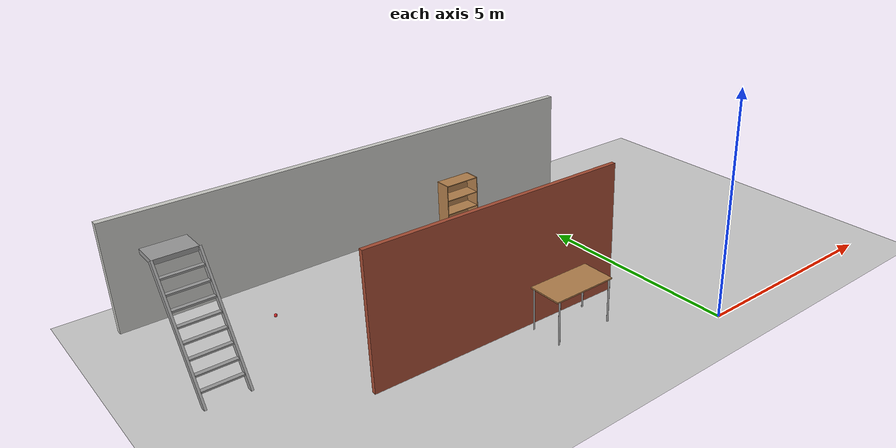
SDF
<sdf version="1.6">
 <world name="default">
  <model name="ground_plane">
   <static>1</static>
   <link name="link">
    <collision name="collision">
     <geometry><plane><normal>0 0 1</normal><size>100 100</size></plane></geometry>
     <surface><friction><ode><mu>100</mu><mu2>50</mu2></ode></friction></surface>
    </collision>
    <visual name="visual">
     <cast_shadows>0</cast_shadows>
     <geometry><plane><normal>0 0 1</normal><size>100 100</size></plane></geometry>
     <material>
      <script><uri>file://media/materials/scripts/gazebo.material</uri><name>Gazebo/Grey</name></script>
     </material>
    </visual>
   </link>
  </model>
  <model name="bookshelf">
   <static>1</static>
   <link name="link">
    <inertial><mass>1</mass></inertial>
    <collision name="back">
     <pose>0 0.005 0.6 0 -0 0</pose>
     <geometry><box><size>0.9 0.01 1.2</size></box></geometry>
    </collision>
    <visual name="visual1">
     <pose>0 0.005 0.6 0 -0 0</pose>
     <geometry><box><size>0.9 0.01 1.2</size></box></geometry>
     <material>
      <script><uri>file://media/materials/scripts/gazebo.material</uri><name>Gazebo/Wood</name></script>
     </material>
    </visual>
    <collision name="left_side">
     <pose>0.45 -0.195 0.6 0 -0 0</pose>
     <geometry><box><size>0.02 0.4 1.2</size></box></geometry>
    </collision>
    <visual name="visual2">
     <pose>0.45 -0.195 0.6 0 -0 0</pose>
     <geometry><box><size>0.02 0.4 1.2</size></box></geometry>
     <material>
      <script><uri>file://media/materials/scripts/gazebo.material</uri><name>Gazebo/Wood</name></script>
     </material>
    </visual>
    <collision name="right_side">
     <pose>-0.45 -0.195 0.6 0 -0 0</pose>
     <geometry><box><size>0.02 0.4 1.2</size></box></geometry>
    </collision>
    <visual name="visual3">
     <pose>-0.45 -0.195 0.6 0 -0 0</pose>
     <geometry><box><size>0.02 0.4 1.2</size></box></geometry>
     <material>
      <script><uri>file://media/materials/scripts/gazebo.material</uri><name>Gazebo/Wood</name></script>
     </material>
    </visual>
    <collision name="bottom">
     <pose>0 -0.195 0.03 0 -0 0</pose>
     <geometry><box><size>0.88 0.4 0.06</size></box></geometry>
    </collision>
    <visual name="visual4">
     <pose>0 -0.195 0.03 0 -0 0</pose>
     <geometry><box><size>0.88 0.4 0.06</size></box></geometry>
     <material>
      <script><uri>file://media/materials/scripts/gazebo.material</uri><name>Gazebo/Wood</name></script>
     </material>
    </visual>
    <collision name="top">
     <pose>0 -0.195 1.19 0 -0 0</pose>
     <geometry><box><size>0.88 0.4 0.02</size></box></geometry>
    </collision>
    <visual name="visual5">
     <pose>0 -0.195 1.19 0 -0 0</pose>
     <geometry><box><size>0.88 0.4 0.02</size></box></geometry>
     <material>
      <script><uri>file://media/materials/scripts/gazebo.material</uri><name>Gazebo/Wood</name></script>
     </material>
    </visual>
    <collision name="low_shelf">
     <pose>0 -0.195 0.43 0 -0 0</pose>
     <geometry><box><size>0.88 0.4 0.02</size></box></geometry>
    </collision>
    <visual name="visual6">
     <pose>0 -0.195 0.43 0 -0 0</pose>
     <geometry><box><size>0.88 0.4 0.02</size></box></geometry>
     <material>
      <script><uri>file://media/materials/scripts/gazebo.material</uri><name>Gazebo/Wood</name></script>
     </material>
    </visual>
    <collision name="high_shelf">
     <pose>0 -0.195 0.8 0 -0 0</pose>
     <geometry><box><size>0.88 0.4 0.02</size></box></geometry>
    </collision>
    <visual name="visual7">
     <pose>0 -0.195 0.8 0 -0 0</pose>
     <geometry><box><size>0.88 0.4 0.02</size></box></geometry>
     <material>
      <script><uri>file://media/materials/scripts/gazebo.material</uri><name>Gazebo/Wood</name></script>
     </material>
    </visual>
   </link>
   <pose>-1.46178 7.33963 0 0 -0 0</pose>
  </model>
  <model name="unit_box">
   <link name="link">
    <inertial>
     <mass>1</mass>
     <inertia>
      <ixx>0.166667</ixx>
      <ixy>0</ixy>
      <ixz>0</ixz>
      <iyy>0.166667</iyy>
      <iyz>0</iyz>
      <izz>0.166667</izz>
     </inertia>
    </inertial>
    <visual name="visual">
     <geometry><box><size>0.1 6 3</size></box></geometry>
     <material>
      <script><name>Gazebo/Bricks</name><uri>file://media/materials/scripts/gazebo.material</uri></script>
      <shader type="pixel"><normal_map>__default__</normal_map></shader>
      <ambient>1 1 1 1</ambient>
      <diffuse>0.7 0.7 0.7 1</diffuse>
      <specular>0.01 0.01 0.01 1</specular>
      <emissive>0 0 0 1</emissive>
     </material>
    </visual>
    <collision name="collision">
     <geometry><box><size>0.1 6 3</size></box></geometry>
     <surface>
      <friction>
       <ode><mu>1</mu><mu2>1</mu2><fdir1>0 0 0</fdir1><slip1>0</slip1><slip2>0</slip2></ode>
       <torsional>
        <coefficient>1</coefficient>
        <patch_radius>0</patch_radius>
        <surface_radius>0</surface_radius>
        <use_patch_radius>1</use_patch_radius>
        <ode><slip>0</slip></ode>
       </torsional>
      </friction>
      <bounce><restitution_coefficient>0</restitution_coefficient><threshold>1e+06</threshold></bounce>
      <contact>
       <collide_without_contact>0</collide_without_contact>
       <collide_without_contact_bitmask>1</collide_without_contact_bitmask>
       <collide_bitmask>1</collide_bitmask>
       <ode>
        <soft_cfm>0</soft_cfm>
        <soft_erp>0.2</soft_erp>
        <kp>1e+13</kp>
        <kd>1</kd>
        <max_vel>0.01</max_vel>
        <min_depth>0</min_depth>
       </ode>
       <bullet>
        <split_impulse>1</split_impulse>
        <split_impulse_penetration_threshold>-0.01</split_impulse_penetration_threshold>
        <soft_cfm>0</soft_cfm>
        <soft_erp>0.2</soft_erp>
        <kp>1e+13</kp>
        <kd>1</kd>
       </bullet>
      </contact>
     </surface>
    </collision>
   </link>
   <static>0</static>
   <pose>-3.89904 2.41632 1.49829 0.00057 9e-06 -1.58713</pose>
  </model>
  <model name="building">
   <link name="Wall_41">
    <pose>-0.05 9.09977 0 0 -0 0</pose>
    <inertial>
     <mass>1</mass>
     <inertia><ixx>1</ixx><ixy>0</ixy><ixz>0</ixz><iyy>1</iyy><iyz>0</iyz><izz>1</izz></inertia>
    </inertial>
    <visual name="Wall_41_Visual">
     <pose>0 0 1.25 0 -0 0</pose>
     <geometry><box><size>11.75 0.15 2.5</size></box></geometry>
     <material>
      <script><uri>file://media/materials/scripts/gazebo.material</uri><name>Gazebo/CeilingTiled</name></script>
      <ambient>1 1 0 1</ambient>
      <shader type="pixel"><normal_map>__default__</normal_map></shader>
      <diffuse>1 1 1 1</diffuse>
      <specular>0 0 0 1</specular>
      <emissive>0 0 0 1</emissive>
     </material>
     <meta><layer>0</layer></meta>
    </visual>
    <collision name="Wall_41_Collision">
     <pose>0 0 1.25 0 -0 0</pose>
     <geometry><box><size>11.75 0.15 2.5</size></box></geometry>
     <surface>
      <friction>
       <ode><mu>1</mu><mu2>1</mu2><fdir1>0 0 0</fdir1><slip1>0</slip1><slip2>0</slip2></ode>
       <torsional>
        <coefficient>1</coefficient>
        <patch_radius>0</patch_radius>
        <surface_radius>0</surface_radius>
        <use_patch_radius>1</use_patch_radius>
        <ode><slip>0</slip></ode>
       </torsional>
      </friction>
      <bounce><restitution_coefficient>0</restitution_coefficient><threshold>1e+06</threshold></bounce>
      <contact>
       <collide_without_contact>0</collide_without_contact>
       <collide_without_contact_bitmask>1</collide_without_contact_bitmask>
       <collide_bitmask>1</collide_bitmask>
       <ode>
        <soft_cfm>0</soft_cfm>
        <soft_erp>0.2</soft_erp>
        <kp>1e+13</kp>
        <kd>1</kd>
        <max_vel>0.01</max_vel>
        <min_depth>0</min_depth>
       </ode>
       <bullet>
        <split_impulse>1</split_impulse>
        <split_impulse_penetration_threshold>-0.01</split_impulse_penetration_threshold>
        <soft_cfm>0</soft_cfm>
        <soft_erp>0.2</soft_erp>
        <kp>1e+13</kp>
        <kd>1</kd>
       </bullet>
      </contact>
     </surface>
    </collision>
   </link>
   <static>1</static>
   <pose>-3.83214 -1.50097 0 0 -0 0</pose>
  </model>
  <model name="ladder_60deg_0rails">
   <static>1</static>
   <link name="step0">
    <pose>0 0.15396 0.266667 0 -0 0</pose>
    <inertial>
     <mass>9.75482</mass>
     <inertia>
      <ixx>0.00957124</ixx>
      <iyy>0.65963</iyy>
      <izz>0.666842</izz>
      <ixy>0</ixy>
      <ixz>0</ixz>
      <iyz>0</iyz>
     </inertia>
    </inertial>
    <collision name="collision"><geometry><box><size>0.9 0.1016 0.0381</size></box></geometry></collision>
    <visual name="visual">
     <geometry><box><size>0.9 0.1016 0.0381</size></box></geometry>
     <material>
      <script><uri>file://media/materials/scripts/gazebo.material</uri><name>Gazebo/Grey</name></script>
     </material>
    </visual>
   </link>
   <link name="step1">
    <pose>0 0.30792 0.533333 0 -0 0</pose>
    <inertial>
     <mass>9.75482</mass>
     <inertia>
      <ixx>0.00957124</ixx>
      <iyy>0.65963</iyy>
      <izz>0.666842</izz>
      <ixy>0</ixy>
      <ixz>0</ixz>
      <iyz>0</iyz>
     </inertia>
    </inertial>
    <collision name="collision"><geometry><box><size>0.9 0.1016 0.0381</size></box></geometry></collision>
    <visual name="visual">
     <geometry><box><size>0.9 0.1016 0.0381</size></box></geometry>
     <material>
      <script><uri>file://media/materials/scripts/gazebo.material</uri><name>Gazebo/Grey</name></script>
     </material>
    </visual>
   </link>
   <link name="step2">
    <pose>0 0.46188 0.8 0 -0 0</pose>
    <inertial>
     <mass>9.75482</mass>
     <inertia>
      <ixx>0.00957124</ixx>
      <iyy>0.65963</iyy>
      <izz>0.666842</izz>
      <ixy>0</ixy>
      <ixz>0</ixz>
      <iyz>0</iyz>
     </inertia>
    </inertial>
    <collision name="collision"><geometry><box><size>0.9 0.1016 0.0381</size></box></geometry></collision>
    <visual name="visual">
     <geometry><box><size>0.9 0.1016 0.0381</size></box></geometry>
     <material>
      <script><uri>file://media/materials/scripts/gazebo.material</uri><name>Gazebo/Grey</name></script>
     </material>
    </visual>
   </link>
   <link name="step3">
    <pose>0 0.61584 1.06667 0 -0 0</pose>
    <inertial>
     <mass>9.75482</mass>
     <inertia>
      <ixx>0.00957124</ixx>
      <iyy>0.65963</iyy>
      <izz>0.666842</izz>
      <ixy>0</ixy>
      <ixz>0</ixz>
      <iyz>0</iyz>
     </inertia>
    </inertial>
    <collision name="collision"><geometry><box><size>0.9 0.1016 0.0381</size></box></geometry></collision>
    <visual name="visual">
     <geometry><box><size>0.9 0.1016 0.0381</size></box></geometry>
     <material>
      <script><uri>file://media/materials/scripts/gazebo.material</uri><name>Gazebo/Grey</name></script>
     </material>
    </visual>
   </link>
   <link name="step4">
    <pose>0 0.7698 1.33333 0 -0 0</pose>
    <inertial>
     <mass>9.75482</mass>
     <inertia>
      <ixx>0.00957124</ixx>
      <iyy>0.65963</iyy>
      <izz>0.666842</izz>
      <ixy>0</ixy>
      <ixz>0</ixz>
      <iyz>0</iyz>
     </inertia>
    </inertial>
    <collision name="collision"><geometry><box><size>0.9 0.1016 0.0381</size></box></geometry></collision>
    <visual name="visual">
     <geometry><box><size>0.9 0.1016 0.0381</size></box></geometry>
     <material>
      <script><uri>file://media/materials/scripts/gazebo.material</uri><name>Gazebo/Grey</name></script>
     </material>
    </visual>
   </link>
   <link name="step5">
    <pose>0 0.92376 1.6 0 -0 0</pose>
    <inertial>
     <mass>9.75482</mass>
     <inertia>
      <ixx>0.00957124</ixx>
      <iyy>0.65963</iyy>
      <izz>0.666842</izz>
      <ixy>0</ixy>
      <ixz>0</ixz>
      <iyz>0</iyz>
     </inertia>
    </inertial>
    <collision name="collision"><geometry><box><size>0.9 0.1016 0.0381</size></box></geometry></collision>
    <visual name="visual">
     <geometry><box><size>0.9 0.1016 0.0381</size></box></geometry>
     <material>
      <script><uri>file://media/materials/scripts/gazebo.material</uri><name>Gazebo/Grey</name></script>
     </material>
    </visual>
   </link>
   <link name="step6">
    <pose>0 1.07772 1.86667 0 -0 0</pose>
    <inertial>
     <mass>9.75482</mass>
     <inertia>
      <ixx>0.00957124</ixx>
      <iyy>0.65963</iyy>
      <izz>0.666842</izz>
      <ixy>0</ixy>
      <ixz>0</ixz>
      <iyz>0</iyz>
     </inertia>
    </inertial>
    <collision name="collision"><geometry><box><size>0.9 0.1016 0.0381</size></box></geometry></collision>
    <visual name="visual">
     <geometry><box><size>0.9 0.1016 0.0381</size></box></geometry>
     <material>
      <script><uri>file://media/materials/scripts/gazebo.material</uri><name>Gazebo/Grey</name></script>
     </material>
    </visual>
   </link>
   <link name="step7">
    <pose>0 1.23168 2.13333 0 -0 0</pose>
    <inertial>
     <mass>9.75482</mass>
     <inertia>
      <ixx>0.00957124</ixx>
      <iyy>0.65963</iyy>
      <izz>0.666842</izz>
      <ixy>0</ixy>
      <ixz>0</ixz>
      <iyz>0</iyz>
     </inertia>
    </inertial>
    <collision name="collision"><geometry><box><size>0.9 0.1016 0.0381</size></box></geometry></collision>
    <visual name="visual">
     <geometry><box><size>0.9 0.1016 0.0381</size></box></geometry>
     <material>
      <script><uri>file://media/materials/scripts/gazebo.material</uri><name>Gazebo/Grey</name></script>
     </material>
    </visual>
   </link>
   <link name="landing">
    <pose>0 1.68564 2.4 0 -0 0</pose>
    <inertial>
     <mass>57.6072</mass>
     <inertia><ixx>1.73518</ixx><iyy>3.89545</iyy><izz>5.6167</izz><ixy>0</ixy><ixz>0</ixz><iyz>0</iyz></inertia>
    </inertial>
    <collision name="collision"><geometry><box><size>0.9 0.6 0.1016</size></box></geometry></collision>
    <visual name="visual">
     <geometry><box><size>0.9 0.6 0.1016</size></box></geometry>
     <material>
      <script><uri>file://media/materials/scripts/gazebo.material</uri><name>Gazebo/Grey</name></script>
     </material>
    </visual>
   </link>
   <link name="left_side_wall">
    <pose>-0.45 0.69282 1.2 1.0472 -0 0</pose>
    <collision name="collision"><geometry><box><size>0.0508 2.85128 0.13</size></box></geometry></collision>
    <visual name="visual">
     <geometry><box><size>0.0508 2.85128 0.13</size></box></geometry>
     <material>
      <script><uri>file://media/materials/scripts/gazebo.material</uri><name>Gazebo/Grey</name></script>
     </material>
    </visual>
   </link>
   <link name="right_side_wall">
    <pose>0.45 0.69282 1.2 1.0472 -0 0</pose>
    <collision name="collision"><geometry><box><size>0.0508 2.85128 0.13</size></box></geometry></collision>
    <visual name="visual">
     <geometry><box><size>0.0508 2.85128 0.13</size></box></geometry>
     <material>
      <script><uri>file://media/materials/scripts/gazebo.material</uri><name>Gazebo/Grey</name></script>
     </material>
    </visual>
   </link>
   <pose>-9.00085 4.06636 0 0 -0 0</pose>
  </model>
  <model name="car">
   <link name="chassis">
    <pose>0 0 0.3 0 -0 0</pose>
    <collision name="collision"><geometry><box><size>2 1 0.2</size></box></geometry></collision>
    <visual name="visual">
     <geometry><box><size>2 1 0.2</size></box></geometry>
     <material>
      <script><uri>file://media/materials/scripts/gazebo.material</uri><name>Gazebo/Green</name></script>
     </material>
    </visual>
    <inertial>
     <inertia><ixx>1</ixx><ixy>0</ixy><ixz>0</ixz><iyy>1</iyy><iyz>0</iyz><izz>1</izz></inertia>
     <mass>1</mass>
    </inertial>
   </link>
   <link name="front_left_wheel">
    <pose>0.8 0.6 0.3 -0 1.5707 1.5707</pose>
    <collision name="collision">
     <geometry><cylinder><radius>0.3</radius><length>0.1</length></cylinder></geometry>
    </collision>
    <visual name="visual">
     <geometry><cylinder><radius>0.3</radius><length>0.1</length></cylinder></geometry>
     <material>
      <script><uri>file://media/materials/scripts/gazebo.material</uri><name>Gazebo/Black</name></script>
     </material>
    </visual>
    <inertial>
     <inertia><ixx>1</ixx><ixy>0</ixy><ixz>0</ixz><iyy>1</iyy><iyz>0</iyz><izz>1</izz></inertia>
     <mass>1</mass>
    </inertial>
   </link>
   <link name="front_right_wheel">
    <pose>0.8 -0.6 0.3 -0 1.5707 1.5707</pose>
    <collision name="collision">
     <geometry><cylinder><radius>0.3</radius><length>0.1</length></cylinder></geometry>
    </collision>
    <visual name="visual">
     <geometry><cylinder><radius>0.3</radius><length>0.1</length></cylinder></geometry>
     <material>
      <script><uri>file://media/materials/scripts/gazebo.material</uri><name>Gazebo/Black</name></script>
     </material>
    </visual>
    <inertial>
     <inertia><ixx>1</ixx><ixy>0</ixy><ixz>0</ixz><iyy>1</iyy><iyz>0</iyz><izz>1</izz></inertia>
     <mass>1</mass>
    </inertial>
   </link>
   <link name="back_right_wheel">
    <pose>-0.8 -0.6 0.3 -0 1.5707 1.5707</pose>
    <collision name="collision">
     <geometry><cylinder><radius>0.3</radius><length>0.1</length></cylinder></geometry>
    </collision>
    <visual name="visual">
     <geometry><cylinder><radius>0.3</radius><length>0.1</length></cylinder></geometry>
     <material>
      <script><uri>file://media/materials/scripts/gazebo.material</uri><name>Gazebo/Black</name></script>
     </material>
    </visual>
    <inertial>
     <inertia><ixx>1</ixx><ixy>0</ixy><ixz>0</ixz><iyy>1</iyy><iyz>0</iyz><izz>1</izz></inertia>
     <mass>1</mass>
    </inertial>
   </link>
   <link name="back_left_wheel">
    <pose>-0.8 0.6 0.3 -0 1.5707 1.5707</pose>
    <collision name="collision">
     <geometry><cylinder><radius>0.3</radius><length>0.1</length></cylinder></geometry>
    </collision>
    <visual name="visual">
     <geometry><cylinder><radius>0.3</radius><length>0.1</length></cylinder></geometry>
     <material>
      <script><uri>file://media/materials/scripts/gazebo.material</uri><name>Gazebo/Black</name></script>
     </material>
    </visual>
    <inertial>
     <inertia><ixx>1</ixx><ixy>0</ixy><ixz>0</ixz><iyy>1</iyy><iyz>0</iyz><izz>1</izz></inertia>
     <mass>1</mass>
    </inertial>
   </link>
   <link name="gas_pedal">
    <pose>0.3 0.1 0.5 0 -0 0</pose>
    <collision name="collision"><geometry><box><size>0.1 0.1 0.1</size></box></geometry></collision>
    <visual name="visual">
     <geometry><box><size>0.1 0.1 0.1</size></box></geometry>
     <material>
      <script><uri>file://media/materials/scripts/gazebo.material</uri><name>Gazebo/Red</name></script>
     </material>
    </visual>
    <inertial>
     <inertia><ixx>1</ixx><ixy>0</ixy><ixz>0</ixz><iyy>1</iyy><iyz>0</iyz><izz>1</izz></inertia>
     <mass>1</mass>
    </inertial>
   </link>
   <link name="brake_pedal">
    <pose>0.3 0.25 0.5 0 -0 0</pose>
    <collision name="collision"><geometry><box><size>0.1 0.1 0.1</size></box></geometry></collision>
    <visual name="visual">
     <geometry><box><size>0.1 0.1 0.1</size></box></geometry>
     <material>
      <script><uri>file://media/materials/scripts/gazebo.material</uri><name>Gazebo/Blue</name></script>
     </material>
    </visual>
    <inertial>
     <inertia><ixx>1</ixx><ixy>0</ixy><ixz>0</ixz><iyy>1</iyy><iyz>0</iyz><izz>1</izz></inertia>
     <mass>1</mass>
    </inertial>
   </link>
   <link name="steering_wheel">
    <pose>0.3 0.2 1 0 1.5707 0</pose>
    <collision name="collision">
     <geometry><cylinder><radius>0.1</radius><length>0.01</length></cylinder></geometry>
    </collision>
    <visual name="visual">
     <geometry><cylinder><radius>0.1</radius><length>0.01</length></cylinder></geometry>
     <material>
      <script><uri>file://media/materials/scripts/gazebo.material</uri><name>Gazebo/Blue</name></script>
     </material>
    </visual>
    <inertial>
     <inertia><ixx>1</ixx><ixy>0</ixy><ixz>0</ixz><iyy>1</iyy><iyz>0</iyz><izz>1</izz></inertia>
     <mass>1</mass>
    </inertial>
   </link>
   <joint name="gas_joint" type="prismatic">
    <parent>chassis</parent>
    <child>gas_pedal</child>
    <axis>
     <xyz>1 0 0</xyz>
     <limit><lower>0</lower><upper>0.2</upper></limit>
     <use_parent_model_frame>1</use_parent_model_frame>
     <dynamics><spring_reference>0</spring_reference><spring_stiffness>0</spring_stiffness></dynamics>
    </axis>
   </joint>
   <joint name="brake_joint" type="prismatic">
    <parent>chassis</parent>
    <child>brake_pedal</child>
    <axis>
     <xyz>1 0 0</xyz>
     <limit><lower>0</lower><upper>0.2</upper></limit>
     <use_parent_model_frame>1</use_parent_model_frame>
     <dynamics><spring_reference>0</spring_reference><spring_stiffness>0</spring_stiffness></dynamics>
    </axis>
   </joint>
   <joint name="steering_joint" type="revolute">
    <parent>chassis</parent>
    <child>steering_wheel</child>
    <axis>
     <xyz>1 0 0</xyz>
     <limit><lower>-7.853</lower><upper>7.853</upper></limit>
     <use_parent_model_frame>1</use_parent_model_frame>
     <dynamics><spring_reference>0</spring_reference><spring_stiffness>0</spring_stiffness></dynamics>
    </axis>
   </joint>
   <joint name="front_left_joint" type="revolute2">
    <parent>chassis</parent>
    <child>front_left_wheel</child>
    <axis>
     <xyz>0 0 1</xyz>
     <limit><lower>-1.18883e-05</lower><upper>-1.18883e-05</upper></limit>
     <use_parent_model_frame>1</use_parent_model_frame>
     <dynamics><spring_reference>0</spring_reference><spring_stiffness>0</spring_stiffness></dynamics>
    </axis>
    <axis2>
     <xyz>0 1 0</xyz>
     <use_parent_model_frame>1</use_parent_model_frame>
     <dynamics><spring_reference>0</spring_reference><spring_stiffness>0</spring_stiffness></dynamics>
    </axis2>
    <physics><ode><limit><cfm>0</cfm><erp>0.9</erp></limit></ode></physics>
   </joint>
   <joint name="front_right_joint" type="revolute2">
    <parent>chassis</parent>
    <child>front_right_wheel</child>
    <axis>
     <xyz>0 0 1</xyz>
     <limit><lower>-1.18883e-05</lower><upper>-1.18883e-05</upper></limit>
     <use_parent_model_frame>1</use_parent_model_frame>
     <dynamics><spring_reference>0</spring_reference><spring_stiffness>0</spring_stiffness></dynamics>
    </axis>
    <axis2>
     <xyz>0 1 0</xyz>
     <use_parent_model_frame>1</use_parent_model_frame>
     <dynamics><spring_reference>0</spring_reference><spring_stiffness>0</spring_stiffness></dynamics>
    </axis2>
    <physics><ode><limit><cfm>0</cfm><erp>0.9</erp></limit></ode></physics>
   </joint>
   <joint name="back_right_joint" type="revolute2">
    <parent>chassis</parent>
    <child>back_right_wheel</child>
    <axis>
     <xyz>0 0 1</xyz>
     <limit><lower>0</lower><upper>0</upper></limit>
     <use_parent_model_frame>1</use_parent_model_frame>
     <dynamics><spring_reference>0</spring_reference><spring_stiffness>0</spring_stiffness></dynamics>
    </axis>
    <axis2>
     <xyz>0 1 0</xyz>
     <use_parent_model_frame>1</use_parent_model_frame>
     <dynamics><spring_reference>0</spring_reference><spring_stiffness>0</spring_stiffness></dynamics>
    </axis2>
    <physics><ode><limit><cfm>0</cfm><erp>0.9</erp></limit></ode></physics>
   </joint>
   <joint name="back_left_joint" type="revolute2">
    <parent>chassis</parent>
    <child>back_left_wheel</child>
    <axis>
     <xyz>0 0 1</xyz>
     <limit><lower>0</lower><upper>0</upper></limit>
     <use_parent_model_frame>1</use_parent_model_frame>
     <dynamics><spring_reference>0</spring_reference><spring_stiffness>0</spring_stiffness></dynamics>
    </axis>
    <axis2>
     <xyz>0 1 0</xyz>
     <use_parent_model_frame>1</use_parent_model_frame>
     <dynamics><spring_reference>0</spring_reference><spring_stiffness>0</spring_stiffness></dynamics>
    </axis2>
    <physics><ode><limit><cfm>0</cfm><erp>0.9</erp></limit></ode></physics>
   </joint>
   <plugin name="vehicle" filename="libVehiclePlugin.so">
    <front_left>front_left_joint</front_left>
    <front_right>front_right_joint</front_right>
    <back_left>back_left_joint</back_left>
    <back_right>back_right_joint</back_right>
    <gas>gas_joint</gas>
    <brake>brake_joint</brake>
    <steering>steering_joint</steering>
    <front_power>10</front_power>
    <rear_power>10</rear_power>
    <tire_angle_range>0.5</tire_angle_range>
    <max_speed>10</max_speed>
    <aero_load>0.1</aero_load>
   </plugin>
   <pose>-3.55882 3.96628 -0.002616 -0.000273 0.000907 -1.59423</pose>
  </model>
  <model name="table">
   <static>1</static>
   <link name="link">
    <collision name="surface">
     <pose>0 0 1 0 -0 0</pose>
     <geometry><box><size>1.5 0.8 0.03</size></box></geometry>
     <surface><friction><ode><mu>0.6</mu><mu2>0.6</mu2></ode></friction></surface>
    </collision>
    <visual name="visual1">
     <pose>0 0 1 0 -0 0</pose>
     <geometry><box><size>1.5 0.8 0.03</size></box></geometry>
     <material>
      <script><uri>file://media/materials/scripts/gazebo.material</uri><name>Gazebo/Wood</name></script>
     </material>
    </visual>
    <collision name="front_left_leg">
     <pose>0.68 0.38 0.5 0 -0 0</pose>
     <geometry><cylinder><radius>0.02</radius><length>1</length></cylinder></geometry>
    </collision>
    <visual name="front_left_leg">
     <pose>0.68 0.38 0.5 0 -0 0</pose>
     <geometry><cylinder><radius>0.02</radius><length>1</length></cylinder></geometry>
     <material>
      <script><uri>file://media/materials/scripts/gazebo.material</uri><name>Gazebo/Grey</name></script>
     </material>
    </visual>
    <collision name="front_right_leg">
     <pose>0.68 -0.38 0.5 0 -0 0</pose>
     <geometry><cylinder><radius>0.02</radius><length>1</length></cylinder></geometry>
    </collision>
    <visual name="front_right_leg">
     <pose>0.68 -0.38 0.5 0 -0 0</pose>
     <geometry><cylinder><radius>0.02</radius><length>1</length></cylinder></geometry>
     <material>
      <script><uri>file://media/materials/scripts/gazebo.material</uri><name>Gazebo/Grey</name></script>
     </material>
    </visual>
    <collision name="back_right_leg">
     <pose>-0.68 -0.38 0.5 0 -0 0</pose>
     <geometry><cylinder><radius>0.02</radius><length>1</length></cylinder></geometry>
    </collision>
    <visual name="back_right_leg">
     <pose>-0.68 -0.38 0.5 0 -0 0</pose>
     <geometry><cylinder><radius>0.02</radius><length>1</length></cylinder></geometry>
     <material>
      <script><uri>file://media/materials/scripts/gazebo.material</uri><name>Gazebo/Grey</name></script>
     </material>
    </visual>
    <collision name="back_left_leg">
     <pose>-0.68 0.38 0.5 0 -0 0</pose>
     <geometry><cylinder><radius>0.02</radius><length>1</length></cylinder></geometry>
    </collision>
    <visual name="back_left_leg">
     <pose>-0.68 0.38 0.5 0 -0 0</pose>
     <geometry><cylinder><radius>0.02</radius><length>1</length></cylinder></geometry>
     <material>
      <script><uri>file://media/materials/scripts/gazebo.material</uri><name>Gazebo/Grey</name></script>
     </material>
    </visual>
   </link>
   <pose>-2.56967 1.78734 0 0 -0 0</pose>
  </model>
  <model name="cricket_ball">
   <link name="link">
    <pose>0 0 0.0375 0 -0 0</pose>
    <inertial>
     <mass>0.1467</mass>
     <inertia>
      <ixx>8.25187e-05</ixx>
      <ixy>0</ixy>
      <ixz>0</ixz>
      <iyy>8.25187e-05</iyy>
      <iyz>0</iyz>
      <izz>8.25187e-05</izz>
     </inertia>
    </inertial>
    <collision name="collision">
     <geometry><sphere><radius>0.0375</radius></sphere></geometry>
     <surface>
      <contact>
       <poissons_ratio>0.347</poissons_ratio>
       <elastic_modulus>8.8e+09</elastic_modulus>
       <ode><kp>100000</kp><kd>100</kd><max_vel>100</max_vel><min_depth>0.001</min_depth></ode>
      </contact>
      <friction>
       <torsional>
        <coefficient>1</coefficient>
        <use_patch_radius>0</use_patch_radius>
        <surface_radius>0.01</surface_radius>
       </torsional>
      </friction>
     </surface>
    </collision>
    <visual name="visual">
     <geometry><sphere><radius>0.0375</radius></sphere></geometry>
     <material>
      <script><uri>file://media/materials/scripts/gazebo.material</uri><name>Gazebo/Red</name></script>
     </material>
    </visual>
    <velocity_decay><linear>0</linear><angular>0.005</angular></velocity_decay>
   </link>
   <pose>-2.34025 3.82919 -0.001014 0 -0 0</pose>
  </model>
  <model name="cricket_ball_0">
   <link name="link">
    <pose>0 0 0.0375 0 -0 0</pose>
    <inertial>
     <mass>0.1467</mass>
     <inertia>
      <ixx>8.25187e-05</ixx>
      <ixy>0</ixy>
      <ixz>0</ixz>
      <iyy>8.25187e-05</iyy>
      <iyz>0</iyz>
      <izz>8.25187e-05</izz>
     </inertia>
    </inertial>
    <collision name="collision">
     <geometry><sphere><radius>0.0375</radius></sphere></geometry>
     <surface>
      <contact>
       <poissons_ratio>0.347</poissons_ratio>
       <elastic_modulus>8.8e+09</elastic_modulus>
       <ode><kp>100000</kp><kd>100</kd><max_vel>100</max_vel><min_depth>0.001</min_depth></ode>
      </contact>
      <friction>
       <torsional>
        <coefficient>1</coefficient>
        <use_patch_radius>0</use_patch_radius>
        <surface_radius>0.01</surface_radius>
       </torsional>
      </friction>
     </surface>
    </collision>
    <visual name="visual">
     <geometry><sphere><radius>0.0375</radius></sphere></geometry>
     <material>
      <script><uri>file://media/materials/scripts/gazebo.material</uri><name>Gazebo/Red</name></script>
     </material>
    </visual>
    <velocity_decay><linear>0</linear><angular>0.005</angular></velocity_decay>
   </link>
   <pose>-7.0526 6.06526 -0.001014 0 -0 0</pose>
  </model>
 </world>
</sdf>
